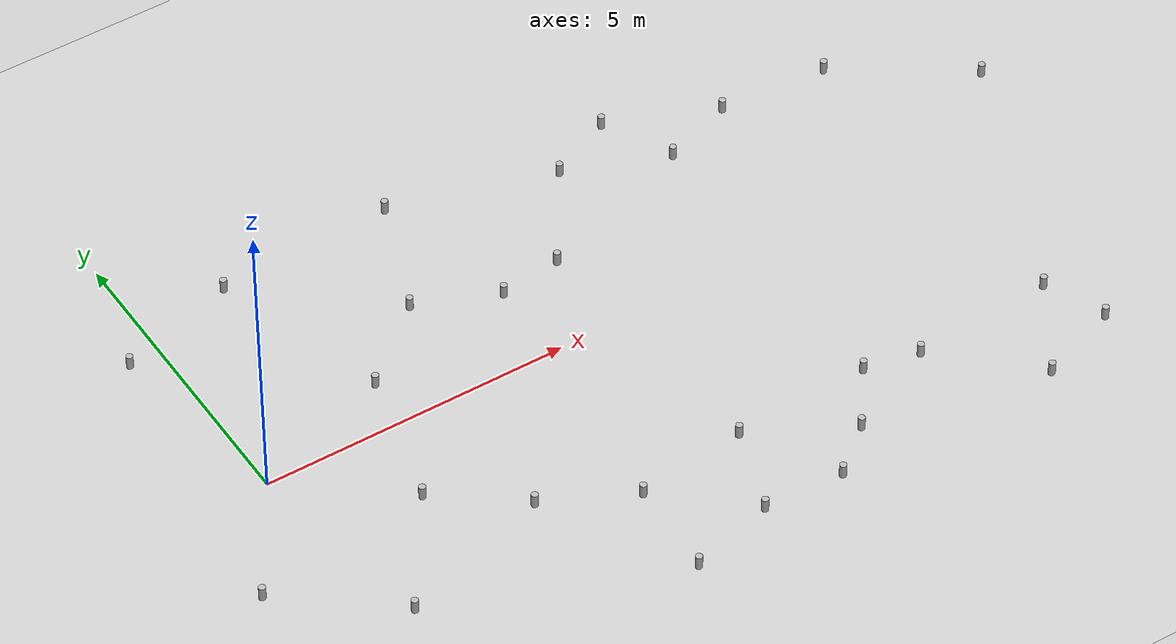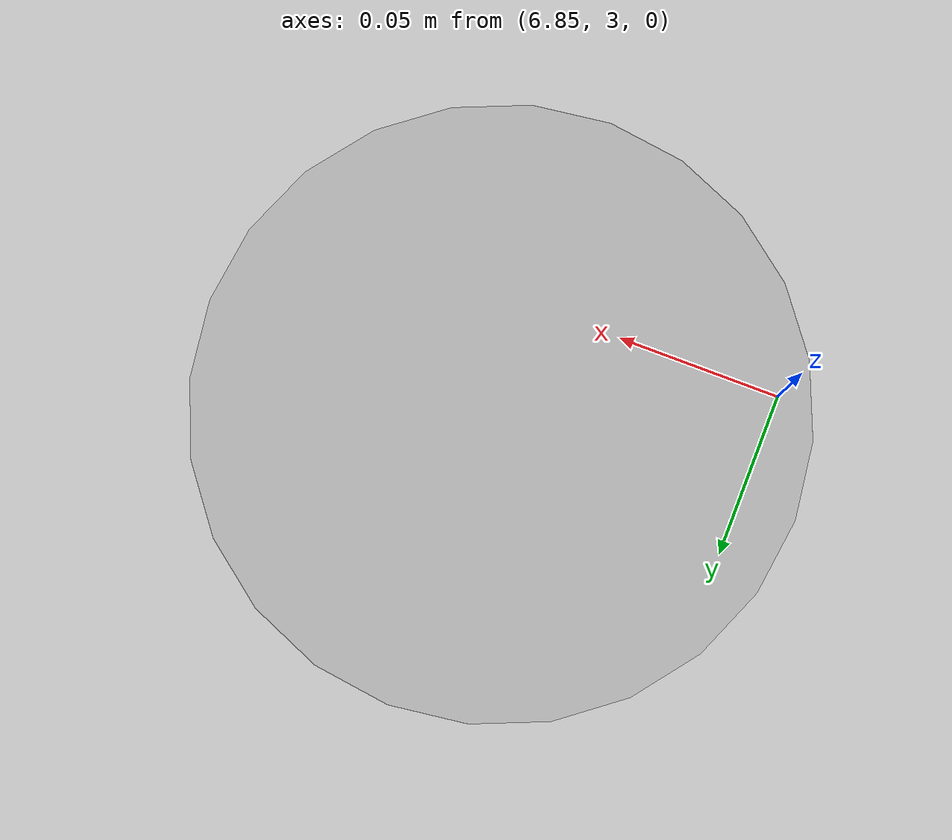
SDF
<sdf version="1.6">
 <world name="myworld">
  <physics name="default_physics" default="0" type="ode">
   <max_step_size>0.001</max_step_size>
   <real_time_factor>1</real_time_factor>
   <real_time_update_rate>1000</real_time_update_rate>
  </physics>
  <light name="sun" type="directional">
   <pose>0 0 10 0 -0 0</pose>
   <diffuse>0.8 0.8 0.8 1</diffuse>
   <specular>0.1 0.1 0.1 1</specular>
   <attenuation>
    <range>1000</range>
    <constant>0.9</constant>
    <linear>0.01</linear>
    <quadratic>0.001</quadratic>
   </attenuation>
   <direction>-0.5 0.5 -1</direction>
  </light>
  <model name="ground_plane">
   <static>1</static>
   <link name="link">
    <collision name="collision">
     <geometry><plane><normal>0 0 1</normal><size>100 100</size></plane></geometry>
     <surface><friction><ode><mu>100</mu><mu2>50</mu2></ode></friction></surface>
    </collision>
    <visual name="visual">
     <cast_shadows>0</cast_shadows>
     <geometry><plane><normal>0 0 1</normal><size>100 100</size></plane></geometry>
     <material>
      <script><uri>file://media/materials/scripts/gazebo.material</uri><name>Gazebo/Grey</name></script>
     </material>
    </visual>
   </link>
  </model>
  <gravity>0 0 -9.81</gravity>
  <magnetic_field>6e-06 2.3e-05 -4.2e-05</magnetic_field>
  <atmosphere type="adiabatic"/>
  <scene><ambient>0.4 0.4 0.4 1</ambient><background>0.7 0.7 0.7 1</background><shadows>1</shadows></scene>
  <spherical_coordinates>
   <surface_model>EARTH_WGS84</surface_model>
   <latitude_deg>0</latitude_deg>
   <longitude_deg>0</longitude_deg>
   <elevation>0</elevation>
   <heading_deg>0</heading_deg>
  </spherical_coordinates>
  <model name="beer">
   <link name="link">
    <pose>0 0 0.115 0 -0 0</pose>
    <inertial>
     <mass>0.39</mass>
     <inertia><ixx>0.00058</ixx><ixy>0</ixy><ixz>0</ixz><iyy>0.00058</iyy><iyz>0</iyz><izz>0.00019</izz></inertia>
    </inertial>
    <collision name="collision">
     <geometry><cylinder><radius>0.055</radius><length>0.23</length></cylinder></geometry>
    </collision>
    <visual name="visual">
     <geometry><cylinder><radius>0.055</radius><length>0.23</length></cylinder></geometry>
     <material>
      <script>
       <uri>model://beer/materials/scripts</uri>
       <uri>model://beer/materials/textures</uri>
       <name>Beer/Diffuse</name>
      </script>
     </material>
    </visual>
   </link>
   <pose>2.31192 0.822437 -7e-06 -1e-06 -0 -2.3e-05</pose>
  </model>
  <model name="beer_2">
   <link name="link">
    <pose>0 0 0.115 0 -0 0</pose>
    <inertial>
     <mass>0.39</mass>
     <inertia><ixx>0.00058</ixx><ixy>0</ixy><ixz>0</ixz><iyy>0.00058</iyy><iyz>0</iyz><izz>0.00019</izz></inertia>
    </inertial>
    <collision name="collision">
     <geometry><cylinder><radius>0.055</radius><length>0.23</length></cylinder></geometry>
    </collision>
    <visual name="visual">
     <geometry><cylinder><radius>0.055</radius><length>0.23</length></cylinder></geometry>
     <material>
      <script>
       <uri>model://beer/materials/scripts</uri>
       <uri>model://beer/materials/textures</uri>
       <name>Beer/Diffuse</name>
      </script>
     </material>
    </visual>
   </link>
   <pose>1.74504 -1.41108 -2e-06 1e-06 0 -2e-05</pose>
  </model>
  <model name="beer_3_clone">
   <link name="link">
    <pose>0 0 0.115 0 -0 0</pose>
    <inertial>
     <mass>0.39</mass>
     <inertia><ixx>0.00058</ixx><ixy>0</ixy><ixz>0</ixz><iyy>0.00058</iyy><iyz>0</iyz><izz>0.00019</izz></inertia>
    </inertial>
    <collision name="collision">
     <geometry><cylinder><radius>0.055</radius><length>0.23</length></cylinder></geometry>
    </collision>
    <visual name="visual">
     <geometry><cylinder><radius>0.055</radius><length>0.23</length></cylinder></geometry>
     <material>
      <script>
       <uri>model://beer/materials/scripts</uri>
       <uri>model://beer/materials/textures</uri>
       <name>Beer/Diffuse</name>
      </script>
     </material>
    </visual>
   </link>
   <pose>4.85716 1.35899 -2e-06 1e-06 0 -1.8e-05</pose>
  </model>
  <model name="beer_3_clone_clone">
   <link name="link">
    <pose>0 0 0.115 0 -0 0</pose>
    <inertial>
     <mass>0.39</mass>
     <inertia><ixx>0.00058</ixx><ixy>0</ixy><ixz>0</ixz><iyy>0.00058</iyy><iyz>0</iyz><izz>0.00019</izz></inertia>
    </inertial>
    <collision name="collision">
     <geometry><cylinder><radius>0.055</radius><length>0.23</length></cylinder></geometry>
    </collision>
    <visual name="visual">
     <geometry><cylinder><radius>0.055</radius><length>0.23</length></cylinder></geometry>
     <material>
      <script>
       <uri>model://beer/materials/scripts</uri>
       <uri>model://beer/materials/textures</uri>
       <name>Beer/Diffuse</name>
      </script>
     </material>
    </visual>
   </link>
   <pose>5.87916 1.49914 -2e-06 1e-06 0 -2e-05</pose>
  </model>
  <model name="beer_3_clone_clone_0">
   <link name="link">
    <pose>0 0 0.115 0 -0 0</pose>
    <inertial>
     <mass>0.39</mass>
     <inertia><ixx>0.00058</ixx><ixy>0</ixy><ixz>0</ixz><iyy>0.00058</iyy><iyz>0</iyz><izz>0.00019</izz></inertia>
    </inertial>
    <collision name="collision">
     <geometry><cylinder><radius>0.055</radius><length>0.23</length></cylinder></geometry>
    </collision>
    <visual name="visual">
     <geometry><cylinder><radius>0.055</radius><length>0.23</length></cylinder></geometry>
     <material>
      <script>
       <uri>model://beer/materials/scripts</uri>
       <uri>model://beer/materials/textures</uri>
       <name>Beer/Diffuse</name>
      </script>
     </material>
    </visual>
   </link>
   <pose>3.55185 1.89061 -7e-06 -1e-06 -0 -1.9e-05</pose>
  </model>
  <model name="beer_3_clone_clone_1">
   <link name="link">
    <pose>0 0 0.115 0 -0 0</pose>
    <inertial>
     <mass>0.39</mass>
     <inertia><ixx>0.00058</ixx><ixy>0</ixy><ixz>0</ixz><iyy>0.00058</iyy><iyz>0</iyz><izz>0.00019</izz></inertia>
    </inertial>
    <collision name="collision">
     <geometry><cylinder><radius>0.055</radius><length>0.23</length></cylinder></geometry>
    </collision>
    <visual name="visual">
     <geometry><cylinder><radius>0.055</radius><length>0.23</length></cylinder></geometry>
     <material>
      <script>
       <uri>model://beer/materials/scripts</uri>
       <uri>model://beer/materials/textures</uri>
       <name>Beer/Diffuse</name>
      </script>
     </material>
    </visual>
   </link>
   <pose>3.01965 -2.40502 -7e-06 -1e-06 -0 -1.9e-05</pose>
  </model>
  <model name="beer_3_clone_clone_2">
   <link name="link">
    <pose>0 0 0.115 0 -0 0</pose>
    <inertial>
     <mass>0.39</mass>
     <inertia><ixx>0.00058</ixx><ixy>0</ixy><ixz>0</ixz><iyy>0.00058</iyy><iyz>0</iyz><izz>0.00019</izz></inertia>
    </inertial>
    <collision name="collision">
     <geometry><cylinder><radius>0.055</radius><length>0.23</length></cylinder></geometry>
    </collision>
    <visual name="visual">
     <geometry><cylinder><radius>0.055</radius><length>0.23</length></cylinder></geometry>
     <material>
      <script>
       <uri>model://beer/materials/scripts</uri>
       <uri>model://beer/materials/textures</uri>
       <name>Beer/Diffuse</name>
      </script>
     </material>
    </visual>
   </link>
   <pose>4.42866 -3.08262 -2e-06 1e-06 0 -1.8e-05</pose>
  </model>
  <model name="beer_3_clone_clone_3">
   <link name="link">
    <pose>0 0 0.115 0 -0 0</pose>
    <inertial>
     <mass>0.39</mass>
     <inertia><ixx>0.00058</ixx><ixy>0</ixy><ixz>0</ixz><iyy>0.00058</iyy><iyz>0</iyz><izz>0.00019</izz></inertia>
    </inertial>
    <collision name="collision">
     <geometry><cylinder><radius>0.055</radius><length>0.23</length></cylinder></geometry>
    </collision>
    <visual name="visual">
     <geometry><cylinder><radius>0.055</radius><length>0.23</length></cylinder></geometry>
     <material>
      <script>
       <uri>model://beer/materials/scripts</uri>
       <uri>model://beer/materials/textures</uri>
       <name>Beer/Diffuse</name>
      </script>
     </material>
    </visual>
   </link>
   <pose>6.2284 -2.85736 -2e-06 1e-06 0 -1.8e-05</pose>
  </model>
  <model name="beer_4">
   <link name="link">
    <pose>0 0 0.115 0 -0 0</pose>
    <inertial>
     <mass>0.39</mass>
     <inertia><ixx>0.00058</ixx><ixy>0</ixy><ixz>0</ixz><iyy>0.00058</iyy><iyz>0</iyz><izz>0.00019</izz></inertia>
    </inertial>
    <collision name="collision">
     <geometry><cylinder><radius>0.055</radius><length>0.23</length></cylinder></geometry>
    </collision>
    <visual name="visual">
     <geometry><cylinder><radius>0.055</radius><length>0.23</length></cylinder></geometry>
     <material>
      <script>
       <uri>model://beer/materials/scripts</uri>
       <uri>model://beer/materials/textures</uri>
       <name>Beer/Diffuse</name>
      </script>
     </material>
    </visual>
   </link>
   <pose>-1.15395 -1.82368 -7e-06 -1e-06 0 -1.1e-05</pose>
  </model>
  <model name="beer_3_clone_clone_4">
   <link name="link">
    <pose>0 0 0.115 0 -0 0</pose>
    <inertial>
     <mass>0.39</mass>
     <inertia><ixx>0.00058</ixx><ixy>0</ixy><ixz>0</ixz><iyy>0.00058</iyy><iyz>0</iyz><izz>0.00019</izz></inertia>
    </inertial>
    <collision name="collision">
     <geometry><cylinder><radius>0.055</radius><length>0.23</length></cylinder></geometry>
    </collision>
    <visual name="visual">
     <geometry><cylinder><radius>0.055</radius><length>0.23</length></cylinder></geometry>
     <material>
      <script>
       <uri>model://beer/materials/scripts</uri>
       <uri>model://beer/materials/textures</uri>
       <name>Beer/Diffuse</name>
      </script>
     </material>
    </visual>
   </link>
   <pose>0.534464 -3.18454 -7e-06 -1e-06 -0 -1.8e-05</pose>
  </model>
  <model name="beer_3_clone_clone_5">
   <link name="link">
    <pose>0 0 0.115 0 -0 0</pose>
    <inertial>
     <mass>0.39</mass>
     <inertia><ixx>0.00058</ixx><ixy>0</ixy><ixz>0</ixz><iyy>0.00058</iyy><iyz>0</iyz><izz>0.00019</izz></inertia>
    </inertial>
    <collision name="collision">
     <geometry><cylinder><radius>0.055</radius><length>0.23</length></cylinder></geometry>
    </collision>
    <visual name="visual">
     <geometry><cylinder><radius>0.055</radius><length>0.23</length></cylinder></geometry>
     <material>
      <script>
       <uri>model://beer/materials/scripts</uri>
       <uri>model://beer/materials/textures</uri>
       <name>Beer/Diffuse</name>
      </script>
     </material>
    </visual>
   </link>
   <pose>4.35169 -4.65056 -7e-06 0 0 -1.8e-05</pose>
  </model>
  <model name="beer_3_clone_clone_6">
   <link name="link">
    <pose>0 0 0.115 0 -0 0</pose>
    <inertial>
     <mass>0.39</mass>
     <inertia><ixx>0.00058</ixx><ixy>0</ixy><ixz>0</ixz><iyy>0.00058</iyy><iyz>0</iyz><izz>0.00019</izz></inertia>
    </inertial>
    <collision name="collision">
     <geometry><cylinder><radius>0.055</radius><length>0.23</length></cylinder></geometry>
    </collision>
    <visual name="visual">
     <geometry><cylinder><radius>0.055</radius><length>0.23</length></cylinder></geometry>
     <material>
      <script>
       <uri>model://beer/materials/scripts</uri>
       <uri>model://beer/materials/textures</uri>
       <name>Beer/Diffuse</name>
      </script>
     </material>
    </visual>
   </link>
   <pose>5.74511 -4.25247 -7e-06 -1e-06 -0 -1.8e-05</pose>
  </model>
  <model name="beer_3_clone_clone_7">
   <link name="link">
    <pose>0 0 0.115 0 -0 0</pose>
    <inertial>
     <mass>0.39</mass>
     <inertia><ixx>0.00058</ixx><ixy>0</ixy><ixz>0</ixz><iyy>0.00058</iyy><iyz>0</iyz><izz>0.00019</izz></inertia>
    </inertial>
    <collision name="collision">
     <geometry><cylinder><radius>0.055</radius><length>0.23</length></cylinder></geometry>
    </collision>
    <visual name="visual">
     <geometry><cylinder><radius>0.055</radius><length>0.23</length></cylinder></geometry>
     <material>
      <script>
       <uri>model://beer/materials/scripts</uri>
       <uri>model://beer/materials/textures</uri>
       <name>Beer/Diffuse</name>
      </script>
     </material>
    </visual>
   </link>
   <pose>6.9127 3.05877 -2e-06 1e-06 0 -1.8e-05</pose>
  </model>
  <model name="beer_3_clone_clone_8">
   <link name="link">
    <pose>0 0 0.115 0 -0 0</pose>
    <inertial>
     <mass>0.39</mass>
     <inertia><ixx>0.00058</ixx><ixy>0</ixy><ixz>0</ixz><iyy>0.00058</iyy><iyz>0</iyz><izz>0.00019</izz></inertia>
    </inertial>
    <collision name="collision">
     <geometry><cylinder><radius>0.055</radius><length>0.23</length></cylinder></geometry>
    </collision>
    <visual name="visual">
     <geometry><cylinder><radius>0.055</radius><length>0.23</length></cylinder></geometry>
     <material>
      <script>
       <uri>model://beer/materials/scripts</uri>
       <uri>model://beer/materials/textures</uri>
       <name>Beer/Diffuse</name>
      </script>
     </material>
    </visual>
   </link>
   <pose>8.55201 2.44216 -2e-06 1e-06 0 -1.8e-05</pose>
  </model>
  <model name="beer_3_clone_clone_9">
   <link name="link">
    <pose>0 0 0.115 0 -0 0</pose>
    <inertial>
     <mass>0.39</mass>
     <inertia><ixx>0.00058</ixx><ixy>0</ixy><ixz>0</ixz><iyy>0.00058</iyy><iyz>0</iyz><izz>0.00019</izz></inertia>
    </inertial>
    <collision name="collision">
     <geometry><cylinder><radius>0.055</radius><length>0.23</length></cylinder></geometry>
    </collision>
    <visual name="visual">
     <geometry><cylinder><radius>0.055</radius><length>0.23</length></cylinder></geometry>
     <material>
      <script>
       <uri>model://beer/materials/scripts</uri>
       <uri>model://beer/materials/textures</uri>
       <name>Beer/Diffuse</name>
      </script>
     </material>
    </visual>
   </link>
   <pose>8.46218 -2.76973 -7e-06 -1e-06 -0 -1.8e-05</pose>
  </model>
  <model name="beer_3_clone_clone_10">
   <link name="link">
    <pose>0 0 0.115 0 -0 0</pose>
    <inertial>
     <mass>0.39</mass>
     <inertia><ixx>0.00058</ixx><ixy>0</ixy><ixz>0</ixz><iyy>0.00058</iyy><iyz>0</iyz><izz>0.00019</izz></inertia>
    </inertial>
    <collision name="collision">
     <geometry><cylinder><radius>0.055</radius><length>0.23</length></cylinder></geometry>
    </collision>
    <visual name="visual">
     <geometry><cylinder><radius>0.055</radius><length>0.23</length></cylinder></geometry>
     <material>
      <script>
       <uri>model://beer/materials/scripts</uri>
       <uri>model://beer/materials/textures</uri>
       <name>Beer/Diffuse</name>
      </script>
     </material>
    </visual>
   </link>
   <pose>7.80188 -3.68713 -2e-06 1e-06 0 -1.8e-05</pose>
  </model>
  <model name="beer_3_clone_clone_11">
   <link name="link">
    <pose>0 0 0.115 0 -0 0</pose>
    <inertial>
     <mass>0.39</mass>
     <inertia><ixx>0.00058</ixx><ixy>0</ixy><ixz>0</ixz><iyy>0.00058</iyy><iyz>0</iyz><izz>0.00019</izz></inertia>
    </inertial>
    <collision name="collision">
     <geometry><cylinder><radius>0.055</radius><length>0.23</length></cylinder></geometry>
    </collision>
    <visual name="visual">
     <geometry><cylinder><radius>0.055</radius><length>0.23</length></cylinder></geometry>
     <material>
      <script>
       <uri>model://beer/materials/scripts</uri>
       <uri>model://beer/materials/textures</uri>
       <name>Beer/Diffuse</name>
      </script>
     </material>
    </visual>
   </link>
   <pose>7.05469 -4.30572 -2e-06 1e-06 0 -1.8e-05</pose>
  </model>
  <model name="beer_3_clone_clone_12">
   <link name="link">
    <pose>0 0 0.115 0 -0 0</pose>
    <inertial>
     <mass>0.39</mass>
     <inertia><ixx>0.00058</ixx><ixy>0</ixy><ixz>0</ixz><iyy>0.00058</iyy><iyz>0</iyz><izz>0.00019</izz></inertia>
    </inertial>
    <collision name="collision">
     <geometry><cylinder><radius>0.055</radius><length>0.23</length></cylinder></geometry>
    </collision>
    <visual name="visual">
     <geometry><cylinder><radius>0.055</radius><length>0.23</length></cylinder></geometry>
     <material>
      <script>
       <uri>model://beer/materials/scripts</uri>
       <uri>model://beer/materials/textures</uri>
       <name>Beer/Diffuse</name>
      </script>
     </material>
    </visual>
   </link>
   <pose>9.3601 -2.94765 -2e-06 1e-06 0 -1.8e-05</pose>
  </model>
  <model name="beer_3_clone_clone_13">
   <link name="link">
    <pose>0 0 0.115 0 -0 0</pose>
    <inertial>
     <mass>0.39</mass>
     <inertia><ixx>0.00058</ixx><ixy>0</ixy><ixz>0</ixz><iyy>0.00058</iyy><iyz>0</iyz><izz>0.00019</izz></inertia>
    </inertial>
    <collision name="collision">
     <geometry><cylinder><radius>0.055</radius><length>0.23</length></cylinder></geometry>
    </collision>
    <visual name="visual">
     <geometry><cylinder><radius>0.055</radius><length>0.23</length></cylinder></geometry>
     <material>
      <script>
       <uri>model://beer/materials/scripts</uri>
       <uri>model://beer/materials/textures</uri>
       <name>Beer/Diffuse</name>
      </script>
     </material>
    </visual>
   </link>
   <pose>9.73784 2.88183 -2e-06 1e-06 0 -1.8e-05</pose>
  </model>
  <model name="beer_3_clone_clone_14">
   <link name="link">
    <pose>0 0 0.115 0 -0 0</pose>
    <inertial>
     <mass>0.39</mass>
     <inertia><ixx>0.00058</ixx><ixy>0</ixy><ixz>0</ixz><iyy>0.00058</iyy><iyz>0</iyz><izz>0.00019</izz></inertia>
    </inertial>
    <collision name="collision">
     <geometry><cylinder><radius>0.055</radius><length>0.23</length></cylinder></geometry>
    </collision>
    <visual name="visual">
     <geometry><cylinder><radius>0.055</radius><length>0.23</length></cylinder></geometry>
     <material>
      <script>
       <uri>model://beer/materials/scripts</uri>
       <uri>model://beer/materials/textures</uri>
       <name>Beer/Diffuse</name>
      </script>
     </material>
    </visual>
   </link>
   <pose>7.99287 3.57538 -2e-06 1e-06 0 -1.7e-05</pose>
  </model>
  <model name="beer_3_clone_clone_15">
   <link name="link">
    <pose>0 0 0.115 0 -0 0</pose>
    <inertial>
     <mass>0.39</mass>
     <inertia><ixx>0.00058</ixx><ixy>0</ixy><ixz>0</ixz><iyy>0.00058</iyy><iyz>0</iyz><izz>0.00019</izz></inertia>
    </inertial>
    <collision name="collision">
     <geometry><cylinder><radius>0.055</radius><length>0.23</length></cylinder></geometry>
    </collision>
    <visual name="visual">
     <geometry><cylinder><radius>0.055</radius><length>0.23</length></cylinder></geometry>
     <material>
      <script>
       <uri>model://beer/materials/scripts</uri>
       <uri>model://beer/materials/textures</uri>
       <name>Beer/Diffuse</name>
      </script>
     </material>
    </visual>
   </link>
   <pose>1.42143 3.68036 -2e-06 1e-06 0 -1.8e-05</pose>
  </model>
  <model name="beer_3_clone_clone_16">
   <link name="link">
    <pose>0 0 0.115 0 -0 0</pose>
    <inertial>
     <mass>0.39</mass>
     <inertia><ixx>0.00058</ixx><ixy>0</ixy><ixz>0</ixz><iyy>0.00058</iyy><iyz>0</iyz><izz>0.00019</izz></inertia>
    </inertial>
    <collision name="collision">
     <geometry><cylinder><radius>0.055</radius><length>0.23</length></cylinder></geometry>
    </collision>
    <visual name="visual">
     <geometry><cylinder><radius>0.055</radius><length>0.23</length></cylinder></geometry>
     <material>
      <script>
       <uri>model://beer/materials/scripts</uri>
       <uri>model://beer/materials/textures</uri>
       <name>Beer/Diffuse</name>
      </script>
     </material>
    </visual>
   </link>
   <pose>-0.512984 3.07933 -7e-06 -1e-06 -0 -1.9e-05</pose>
  </model>
  <model name="beer_3_clone_clone_17">
   <link name="link">
    <pose>0 0 0.115 0 -0 0</pose>
    <inertial>
     <mass>0.39</mass>
     <inertia><ixx>0.00058</ixx><ixy>0</ixy><ixz>0</ixz><iyy>0.00058</iyy><iyz>0</iyz><izz>0.00019</izz></inertia>
    </inertial>
    <collision name="collision">
     <geometry><cylinder><radius>0.055</radius><length>0.23</length></cylinder></geometry>
    </collision>
    <visual name="visual">
     <geometry><cylinder><radius>0.055</radius><length>0.23</length></cylinder></geometry>
     <material>
      <script>
       <uri>model://beer/materials/scripts</uri>
       <uri>model://beer/materials/textures</uri>
       <name>Beer/Diffuse</name>
      </script>
     </material>
    </visual>
   </link>
   <pose>4.28034 3.80047 -2e-06 1e-06 0 -1.8e-05</pose>
  </model>
  <model name="beer_3_clone_clone_18">
   <link name="link">
    <pose>0 0 0.115 0 -0 0</pose>
    <inertial>
     <mass>0.39</mass>
     <inertia><ixx>0.00058</ixx><ixy>0</ixy><ixz>0</ixz><iyy>0.00058</iyy><iyz>0</iyz><izz>0.00019</izz></inertia>
    </inertial>
    <collision name="collision">
     <geometry><cylinder><radius>0.055</radius><length>0.23</length></cylinder></geometry>
    </collision>
    <visual name="visual">
     <geometry><cylinder><radius>0.055</radius><length>0.23</length></cylinder></geometry>
     <material>
      <script>
       <uri>model://beer/materials/scripts</uri>
       <uri>model://beer/materials/textures</uri>
       <name>Beer/Diffuse</name>
      </script>
     </material>
    </visual>
   </link>
   <pose>13.5163 1.3977 -2e-06 1e-06 0 -1.8e-05</pose>
  </model>
  <model name="beer_3_clone_clone_19">
   <link name="link">
    <pose>0 0 0.115 0 -0 0</pose>
    <inertial>
     <mass>0.39</mass>
     <inertia><ixx>0.00058</ixx><ixy>0</ixy><ixz>0</ixz><iyy>0.00058</iyy><iyz>0</iyz><izz>0.00019</izz></inertia>
    </inertial>
    <collision name="collision">
     <geometry><cylinder><radius>0.055</radius><length>0.23</length></cylinder></geometry>
    </collision>
    <visual name="visual">
     <geometry><cylinder><radius>0.055</radius><length>0.23</length></cylinder></geometry>
     <material>
      <script>
       <uri>model://beer/materials/scripts</uri>
       <uri>model://beer/materials/textures</uri>
       <name>Beer/Diffuse</name>
      </script>
     </material>
    </visual>
   </link>
   <pose>10.7599 -4.28531 -2e-06 1e-06 0 -1.7e-05</pose>
  </model>
  <model name="beer_3_clone_clone_20">
   <link name="link">
    <pose>0 0 0.115 0 -0 0</pose>
    <inertial>
     <mass>0.39</mass>
     <inertia><ixx>0.00058</ixx><ixy>0</ixy><ixz>0</ixz><iyy>0.00058</iyy><iyz>0</iyz><izz>0.00019</izz></inertia>
    </inertial>
    <collision name="collision">
     <geometry><cylinder><radius>0.055</radius><length>0.23</length></cylinder></geometry>
    </collision>
    <visual name="visual">
     <geometry><cylinder><radius>0.055</radius><length>0.23</length></cylinder></geometry>
     <material>
      <script>
       <uri>model://beer/materials/scripts</uri>
       <uri>model://beer/materials/textures</uri>
       <name>Beer/Diffuse</name>
      </script>
     </material>
    </visual>
   </link>
   <pose>11.6741 -2.79684 -2e-06 1e-06 -0 -1.9e-05</pose>
  </model>
  <model name="beer_3_clone_clone_21">
   <link name="link">
    <pose>0 0 0.115 0 -0 0</pose>
    <inertial>
     <mass>0.39</mass>
     <inertia><ixx>0.00058</ixx><ixy>0</ixy><ixz>0</ixz><iyy>0.00058</iyy><iyz>0</iyz><izz>0.00019</izz></inertia>
    </inertial>
    <collision name="collision">
     <geometry><cylinder><radius>0.055</radius><length>0.23</length></cylinder></geometry>
    </collision>
    <visual name="visual">
     <geometry><cylinder><radius>0.055</radius><length>0.23</length></cylinder></geometry>
     <material>
      <script>
       <uri>model://beer/materials/scripts</uri>
       <uri>model://beer/materials/textures</uri>
       <name>Beer/Diffuse</name>
      </script>
     </material>
    </visual>
   </link>
   <pose>12.0812 -3.79227 -7e-06 -1e-06 -0 -1.9e-05</pose>
  </model>
  <model name="beer_3_clone_clone_22">
   <link name="link">
    <pose>0 0 0.115 0 -0 0</pose>
    <inertial>
     <mass>0.39</mass>
     <inertia><ixx>0.00058</ixx><ixy>0</ixy><ixz>0</ixz><iyy>0.00058</iyy><iyz>0</iyz><izz>0.00019</izz></inertia>
    </inertial>
    <collision name="collision">
     <geometry><cylinder><radius>0.055</radius><length>0.23</length></cylinder></geometry>
    </collision>
    <visual name="visual">
     <geometry><cylinder><radius>0.055</radius><length>0.23</length></cylinder></geometry>
     <material>
      <script>
       <uri>model://beer/materials/scripts</uri>
       <uri>model://beer/materials/textures</uri>
       <name>Beer/Diffuse</name>
      </script>
     </material>
    </visual>
   </link>
   <pose>11.5169 2.75794 -2e-06 1e-06 0 -1.8e-05</pose>
  </model>
 </world>
</sdf>
